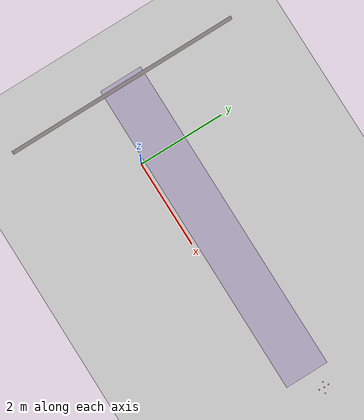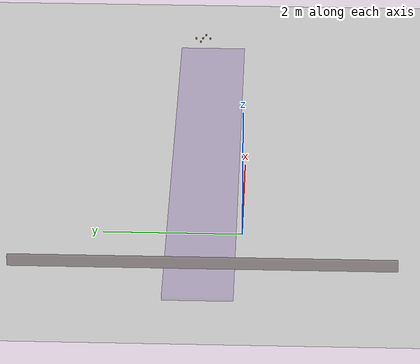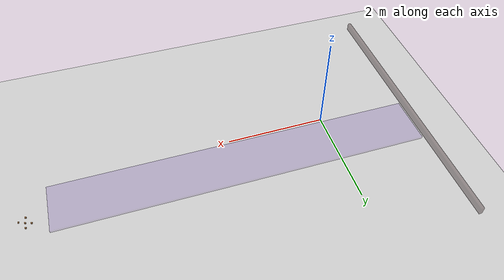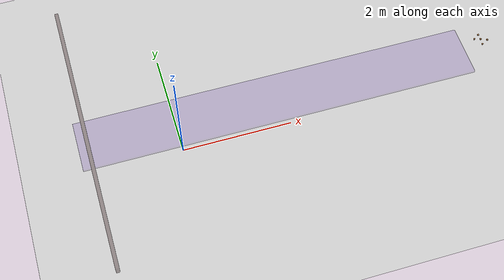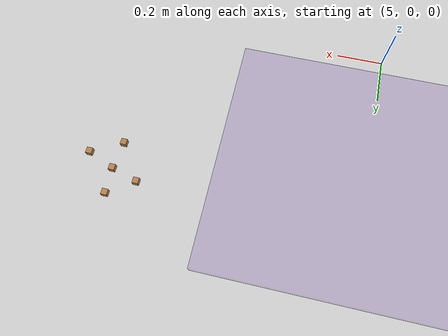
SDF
<sdf version="1.7">
 <world name="default">
  <light name="sun" type="directional">
   <pose>0 0 10 0 -0 0</pose>
   <diffuse>0.8 0.8 0.8 1</diffuse>
   <specular>0.2 0.2 0.2 1</specular>
   <attenuation>
    <range>1000</range>
    <constant>0.9</constant>
    <linear>0.01</linear>
    <quadratic>0.001</quadratic>
   </attenuation>
   <direction>-0.5 0.1 -0.9</direction>
   <spot><inner_angle>0</inner_angle><outer_angle>0</outer_angle><falloff>0</falloff></spot>
  </light>
  <model name="ground_plane">
   <static>1</static>
   <link name="link">
    <collision name="collision">
     <geometry><plane><normal>0 0 1</normal><size>100 100</size></plane></geometry>
     <surface>
      <contact><collide_bitmask>65535</collide_bitmask></contact>
      <friction><ode><mu>100</mu><mu2>50</mu2></ode></friction>
     </surface>
    </collision>
    <visual name="visual">
     <cast_shadows>0</cast_shadows>
     <geometry><plane><normal>0 0 1</normal><size>100 100</size></plane></geometry>
     <material>
      <script><uri>file://media/materials/scripts/gazebo.material</uri><name>Gazebo/Grey</name></script>
     </material>
    </visual>
   </link>
  </model>
  <gravity>0 0 -9.8</gravity>
  <magnetic_field>6e-06 2.3e-05 -4.2e-05</magnetic_field>
  <atmosphere type="adiabatic"/>
  <physics type="ode">
   <max_step_size>0.001</max_step_size>
   <real_time_factor>1</real_time_factor>
   <real_time_update_rate>1000</real_time_update_rate>
  </physics>
  <scene><ambient>0.4 0.4 0.4 1</ambient><background>0.7 0.7 0.7 1</background><shadows>1</shadows></scene>
  <spherical_coordinates>
   <surface_model>EARTH_WGS84</surface_model>
   <latitude_deg>0</latitude_deg>
   <longitude_deg>0</longitude_deg>
   <elevation>0</elevation>
   <heading_deg>0</heading_deg>
  </spherical_coordinates>
  <model name="cube1">
   <link name="link">
    <pose>0 0 0.0125 0 -0 0</pose>
    <inertial>
     <mass>0.0073</mass>
     <inertia>
      <ixx>7.60417e-07</ixx>
      <ixy>0</ixy>
      <ixz>0</ixz>
      <iyy>7.60417e-07</iyy>
      <iyz>0</iyz>
      <izz>7.60417e-07</izz>
     </inertia>
    </inertial>
    <visual name="visual">
     <geometry><box><size>0.025 0.025 0.025</size></box></geometry>
     <material>
      <script><uri>file://media/materials/scripts/gazebo.material</uri><name>Gazebo/Wood</name></script>
      <shader type="pixel"/>
     </material>
    </visual>
    <collision name="collision">
     <geometry><box><size>0.025 0.025 0.025</size></box></geometry>
     <surface>
      <friction>
       <ode><mu>1</mu><mu2>1</mu2><fdir1>0 0 0</fdir1><slip1>0</slip1><slip2>0</slip2></ode>
       <torsional>
        <coefficient>1</coefficient>
        <patch_radius>0</patch_radius>
        <surface_radius>0.01</surface_radius>
        <use_patch_radius>0</use_patch_radius>
        <ode><slip>0</slip></ode>
       </torsional>
      </friction>
      <bounce><restitution_coefficient>0</restitution_coefficient><threshold>1e+06</threshold></bounce>
      <contact>
       <collide_without_contact>0</collide_without_contact>
       <collide_without_contact_bitmask>1</collide_without_contact_bitmask>
       <collide_bitmask>1</collide_bitmask>
       <ode>
        <soft_cfm>0</soft_cfm>
        <soft_erp>0.2</soft_erp>
        <kp>100000</kp>
        <kd>100</kd>
        <max_vel>100</max_vel>
        <min_depth>0.001</min_depth>
       </ode>
       <bullet>
        <split_impulse>1</split_impulse>
        <split_impulse_penetration_threshold>-0.01</split_impulse_penetration_threshold>
        <soft_cfm>0</soft_cfm>
        <soft_erp>0.2</soft_erp>
        <kp>100000</kp>
        <kd>100</kd>
       </bullet>
      </contact>
     </surface>
    </collision>
   </link>
   <static>0</static>
   <pose>6.14625 0.712855 -0.000445 5.8e-05 -5.8e-05 0</pose>
  </model>
  <model name="cube2">
   <link name="link">
    <pose>0 0 0.0125 0 -0 0</pose>
    <inertial>
     <mass>0.0073</mass>
     <inertia>
      <ixx>7.60417e-07</ixx>
      <ixy>0</ixy>
      <ixz>0</ixz>
      <iyy>7.60417e-07</iyy>
      <iyz>0</iyz>
      <izz>7.60417e-07</izz>
     </inertia>
    </inertial>
    <visual name="visual">
     <geometry><box><size>0.025 0.025 0.025</size></box></geometry>
     <material>
      <script><uri>file://media/materials/scripts/gazebo.material</uri><name>Gazebo/Wood</name></script>
      <shader type="pixel"/>
     </material>
    </visual>
    <collision name="collision">
     <geometry><box><size>0.025 0.025 0.025</size></box></geometry>
     <surface>
      <friction>
       <ode><mu>1</mu><mu2>1</mu2><fdir1>0 0 0</fdir1><slip1>0</slip1><slip2>0</slip2></ode>
       <torsional>
        <coefficient>1</coefficient>
        <patch_radius>0</patch_radius>
        <surface_radius>0.01</surface_radius>
        <use_patch_radius>0</use_patch_radius>
        <ode><slip>0</slip></ode>
       </torsional>
      </friction>
      <bounce><restitution_coefficient>0</restitution_coefficient><threshold>1e+06</threshold></bounce>
      <contact>
       <collide_without_contact>0</collide_without_contact>
       <collide_without_contact_bitmask>1</collide_without_contact_bitmask>
       <collide_bitmask>1</collide_bitmask>
       <ode>
        <soft_cfm>0</soft_cfm>
        <soft_erp>0.2</soft_erp>
        <kp>100000</kp>
        <kd>100</kd>
        <max_vel>100</max_vel>
        <min_depth>0.001</min_depth>
       </ode>
       <bullet>
        <split_impulse>1</split_impulse>
        <split_impulse_penetration_threshold>-0.01</split_impulse_penetration_threshold>
        <soft_cfm>0</soft_cfm>
        <soft_erp>0.2</soft_erp>
        <kp>100000</kp>
        <kd>100</kd>
       </bullet>
      </contact>
     </surface>
    </collision>
   </link>
   <static>0</static>
   <pose>6.01909 0.643659 -0.000445 5.8e-05 -5.8e-05 0</pose>
  </model>
  <model name="cube3">
   <link name="link">
    <pose>0 0 0.0125 0 -0 0</pose>
    <inertial>
     <mass>0.0073</mass>
     <inertia>
      <ixx>7.60417e-07</ixx>
      <ixy>0</ixy>
      <ixz>0</ixz>
      <iyy>7.60417e-07</iyy>
      <iyz>0</iyz>
      <izz>7.60417e-07</izz>
     </inertia>
    </inertial>
    <visual name="visual">
     <geometry><box><size>0.025 0.025 0.025</size></box></geometry>
     <material>
      <script><uri>file://media/materials/scripts/gazebo.material</uri><name>Gazebo/Wood</name></script>
      <shader type="pixel"/>
     </material>
    </visual>
    <collision name="collision">
     <geometry><box><size>0.025 0.025 0.025</size></box></geometry>
     <surface>
      <friction>
       <ode><mu>1</mu><mu2>1</mu2><fdir1>0 0 0</fdir1><slip1>0</slip1><slip2>0</slip2></ode>
       <torsional>
        <coefficient>1</coefficient>
        <patch_radius>0</patch_radius>
        <surface_radius>0.01</surface_radius>
        <use_patch_radius>0</use_patch_radius>
        <ode><slip>0</slip></ode>
       </torsional>
      </friction>
      <bounce><restitution_coefficient>0</restitution_coefficient><threshold>1e+06</threshold></bounce>
      <contact>
       <collide_without_contact>0</collide_without_contact>
       <collide_without_contact_bitmask>1</collide_without_contact_bitmask>
       <collide_bitmask>1</collide_bitmask>
       <ode>
        <soft_cfm>0</soft_cfm>
        <soft_erp>0.2</soft_erp>
        <kp>100000</kp>
        <kd>100</kd>
        <max_vel>100</max_vel>
        <min_depth>0.001</min_depth>
       </ode>
       <bullet>
        <split_impulse>1</split_impulse>
        <split_impulse_penetration_threshold>-0.01</split_impulse_penetration_threshold>
        <soft_cfm>0</soft_cfm>
        <soft_erp>0.2</soft_erp>
        <kp>100000</kp>
        <kd>100</kd>
       </bullet>
      </contact>
     </surface>
    </collision>
   </link>
   <static>0</static>
   <pose>5.91803 0.796828 -0.000445 5.8e-05 -5.8e-05 0</pose>
  </model>
  <model name="cube4">
   <link name="link">
    <pose>0 0 0.0125 0 -0 0</pose>
    <inertial>
     <mass>0.0073</mass>
     <inertia>
      <ixx>7.60417e-07</ixx>
      <ixy>0</ixy>
      <ixz>0</ixz>
      <iyy>7.60417e-07</iyy>
      <iyz>0</iyz>
      <izz>7.60417e-07</izz>
     </inertia>
    </inertial>
    <visual name="visual">
     <geometry><box><size>0.025 0.025 0.025</size></box></geometry>
     <material>
      <script><uri>file://media/materials/scripts/gazebo.material</uri><name>Gazebo/Wood</name></script>
      <shader type="pixel"/>
     </material>
    </visual>
    <collision name="collision">
     <geometry><box><size>0.025 0.025 0.025</size></box></geometry>
     <surface>
      <friction>
       <ode><mu>1</mu><mu2>1</mu2><fdir1>0 0 0</fdir1><slip1>0</slip1><slip2>0</slip2></ode>
       <torsional>
        <coefficient>1</coefficient>
        <patch_radius>0</patch_radius>
        <surface_radius>0.01</surface_radius>
        <use_patch_radius>0</use_patch_radius>
        <ode><slip>0</slip></ode>
       </torsional>
      </friction>
      <bounce><restitution_coefficient>0</restitution_coefficient><threshold>1e+06</threshold></bounce>
      <contact>
       <collide_without_contact>0</collide_without_contact>
       <collide_without_contact_bitmask>1</collide_without_contact_bitmask>
       <collide_bitmask>1</collide_bitmask>
       <ode>
        <soft_cfm>0</soft_cfm>
        <soft_erp>0.2</soft_erp>
        <kp>100000</kp>
        <kd>100</kd>
        <max_vel>100</max_vel>
        <min_depth>0.001</min_depth>
       </ode>
       <bullet>
        <split_impulse>1</split_impulse>
        <split_impulse_penetration_threshold>-0.01</split_impulse_penetration_threshold>
        <soft_cfm>0</soft_cfm>
        <soft_erp>0.2</soft_erp>
        <kp>100000</kp>
        <kd>100</kd>
       </bullet>
      </contact>
     </surface>
    </collision>
   </link>
   <static>0</static>
   <pose>6.02459 0.869695 -0.000445 5.8e-05 -5.8e-05 0</pose>
  </model>
  <model name="cube5">
   <link name="link">
    <pose>0 0 0.0125 0 -0 0</pose>
    <inertial>
     <mass>0.0073</mass>
     <inertia>
      <ixx>7.60417e-07</ixx>
      <ixy>0</ixy>
      <ixz>0</ixz>
      <iyy>7.60417e-07</iyy>
      <iyz>0</iyz>
      <izz>7.60417e-07</izz>
     </inertia>
    </inertial>
    <visual name="visual">
     <geometry><box><size>0.025 0.025 0.025</size></box></geometry>
     <material>
      <script><uri>file://media/materials/scripts/gazebo.material</uri><name>Gazebo/Wood</name></script>
      <shader type="pixel"/>
     </material>
    </visual>
    <collision name="collision">
     <geometry><box><size>0.025 0.025 0.025</size></box></geometry>
     <surface>
      <friction>
       <ode><mu>1</mu><mu2>1</mu2><fdir1>0 0 0</fdir1><slip1>0</slip1><slip2>0</slip2></ode>
       <torsional>
        <coefficient>1</coefficient>
        <patch_radius>0</patch_radius>
        <surface_radius>0.01</surface_radius>
        <use_patch_radius>0</use_patch_radius>
        <ode><slip>0</slip></ode>
       </torsional>
      </friction>
      <bounce><restitution_coefficient>0</restitution_coefficient><threshold>1e+06</threshold></bounce>
      <contact>
       <collide_without_contact>0</collide_without_contact>
       <collide_without_contact_bitmask>1</collide_without_contact_bitmask>
       <collide_bitmask>1</collide_bitmask>
       <ode>
        <soft_cfm>0</soft_cfm>
        <soft_erp>0.2</soft_erp>
        <kp>100000</kp>
        <kd>100</kd>
        <max_vel>100</max_vel>
        <min_depth>0.001</min_depth>
       </ode>
       <bullet>
        <split_impulse>1</split_impulse>
        <split_impulse_penetration_threshold>-0.01</split_impulse_penetration_threshold>
        <soft_cfm>0</soft_cfm>
        <soft_erp>0.2</soft_erp>
        <kp>100000</kp>
        <kd>100</kd>
       </bullet>
      </contact>
     </surface>
    </collision>
   </link>
   <static>0</static>
   <pose>6.03076 0.761854 -0.000445 5.8e-05 -5.8e-05 0</pose>
  </model>
  <model name="conveyor_belt">
   <link name="link">
    <inertial>
     <mass>1</mass>
     <inertia>
      <ixx>0.166667</ixx>
      <ixy>0</ixy>
      <ixz>0</ixz>
      <iyy>0.166667</iyy>
      <iyz>0</iyz>
      <izz>0.166667</izz>
     </inertia>
    </inertial>
    <visual name="visual">
     <geometry><box><size>7.40358 1 0.049259</size></box></geometry>
     <material>
      <script><name>Gazebo/Grey</name><uri>file://media/materials/scripts/gazebo.material</uri></script>
      <shader type="pixel"><normal_map>__default__</normal_map></shader>
      <diffuse>0.3 0.1 0.6 0.2</diffuse>
      <ambient>0.3 0.3 0.3 1</ambient>
      <specular>0.01 0.01 0.01 1</specular>
      <emissive>0 0 0 1</emissive>
     </material>
    </visual>
    <collision name="collision">
     <geometry><box><size>7.40358 1 0.049259</size></box></geometry>
     <surface>
      <friction>
       <ode><mu>1</mu><mu2>1</mu2><fdir1>0 0 0</fdir1><slip1>0</slip1><slip2>0</slip2></ode>
       <torsional>
        <coefficient>1</coefficient>
        <patch_radius>0</patch_radius>
        <surface_radius>0</surface_radius>
        <use_patch_radius>1</use_patch_radius>
        <ode><slip>0</slip></ode>
       </torsional>
      </friction>
      <bounce><restitution_coefficient>0</restitution_coefficient><threshold>1e+06</threshold></bounce>
      <contact>
       <collide_without_contact>0</collide_without_contact>
       <collide_without_contact_bitmask>1</collide_without_contact_bitmask>
       <collide_bitmask>1</collide_bitmask>
       <ode>
        <soft_cfm>0</soft_cfm>
        <soft_erp>0.2</soft_erp>
        <kp>1e+13</kp>
        <kd>1</kd>
        <max_vel>0.01</max_vel>
        <min_depth>0</min_depth>
       </ode>
       <bullet>
        <split_impulse>1</split_impulse>
        <split_impulse_penetration_threshold>-0.01</split_impulse_penetration_threshold>
        <soft_cfm>0</soft_cfm>
        <soft_erp>0.2</soft_erp>
        <kp>1e+13</kp>
        <kd>1</kd>
       </bullet>
      </contact>
     </surface>
    </collision>
   </link>
   <static>1</static>
   <pose>1.91834 0.587691 0.024629 0 -0 3e-06</pose>
  </model>
  <model name="barrier">
   <link name="link">
    <inertial>
     <mass>1</mass>
     <inertia>
      <ixx>0.166667</ixx>
      <ixy>0</ixy>
      <ixz>0</ixz>
      <iyy>0.166667</iyy>
      <iyz>0</iyz>
      <izz>0.166667</izz>
     </inertia>
    </inertial>
    <visual name="visual">
     <geometry><box><size>0.063557 5.41633 0.153674</size></box></geometry>
     <material>
      <script><name>Gazebo/Grey</name><uri>file://media/materials/scripts/gazebo.material</uri></script>
      <shader type="pixel"><normal_map>__default__</normal_map></shader>
      <diffuse>0.2 0.1 0.1 0.4</diffuse>
      <ambient>0.3 0.3 0.3 1</ambient>
      <specular>0.01 0.01 0.01 1</specular>
      <emissive>0 0 0 1</emissive>
     </material>
    </visual>
    <collision name="collision">
     <geometry><box><size>0.063557 5.41633 0.153674</size></box></geometry>
     <surface>
      <friction>
       <ode><mu>1</mu><mu2>1</mu2><fdir1>0 0 0</fdir1><slip1>0</slip1><slip2>0</slip2></ode>
       <torsional>
        <coefficient>1</coefficient>
        <patch_radius>0</patch_radius>
        <surface_radius>0</surface_radius>
        <use_patch_radius>1</use_patch_radius>
        <ode><slip>0</slip></ode>
       </torsional>
      </friction>
      <bounce><restitution_coefficient>0</restitution_coefficient><threshold>1e+06</threshold></bounce>
      <contact>
       <collide_without_contact>0</collide_without_contact>
       <collide_without_contact_bitmask>1</collide_without_contact_bitmask>
       <collide_bitmask>1</collide_bitmask>
       <ode>
        <soft_cfm>0</soft_cfm>
        <soft_erp>0.2</soft_erp>
        <kp>1e+13</kp>
        <kd>1</kd>
        <max_vel>0.01</max_vel>
        <min_depth>0</min_depth>
       </ode>
       <bullet>
        <split_impulse>1</split_impulse>
        <split_impulse_penetration_threshold>-0.01</split_impulse_penetration_threshold>
        <soft_cfm>0</soft_cfm>
        <soft_erp>0.2</soft_erp>
        <kp>1e+13</kp>
        <kd>1</kd>
       </bullet>
      </contact>
     </surface>
    </collision>
   </link>
   <static>1</static>
   <pose>-1.5923 0.524729 0.5 0 -0 0</pose>
  </model>
 </world>
</sdf>
